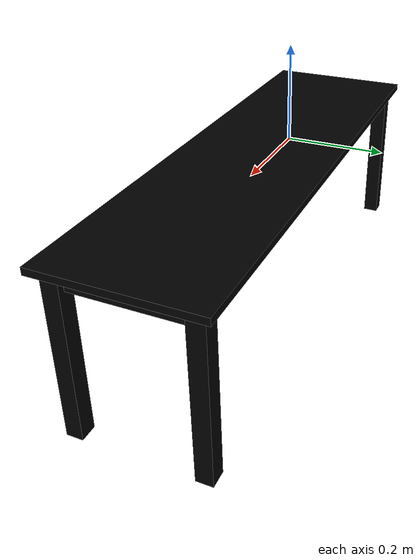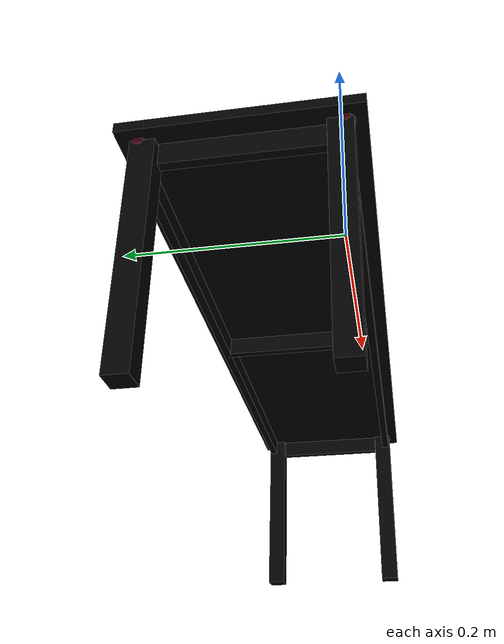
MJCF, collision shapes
<mujoco model="bench_bjursta_0210">
  <custom>
    <numeric data="0.044005 0.147878 0.01267 0.707107 0.0 0.707107 0.0" name="0_part0_initpos" />
    <numeric data="-0.034303 -0.042017 0.018623 0.0 0.999917 0.012922 0.0" name="4_part4_initpos" />
    <numeric data="-0.26206 0.145358 0.01267 -0.707107 0.0 0.707107 0.0" name="3_part3_initpos" />
    <numeric data="0.067242 0.223837 0.01267 0.49269 -0.49269 0.507205 -0.507205" name="2_part2_initpos" />
    <numeric data="-0.237903 0.241028 0.01267 0.502294 -0.502294 -0.497695 0.497695" name="1_part1_initpos" />
  </custom>
  <asset>
    <mesh file="bench_bjursta_0210/0.stl" name="part0" scale="0.0005 0.0005 0.0005" />
    <mesh file="bench_bjursta_0210/4.stl" name="part4" scale="0.0005 0.0005 0.0005" />
    <mesh file="bench_bjursta_0210/3.stl" name="part3" scale="0.0005 0.0005 0.0005" />
    <mesh file="bench_bjursta_0210/2.stl" name="part2" scale="0.0005 0.0005 0.0005" />
    <mesh file="bench_bjursta_0210/1.stl" name="part1" scale="0.0005 0.0005 0.0005" />
  </asset>

  <equality>
    <weld active="false" body1="0_part0" body2="4_part4" solimp="1 1 0.5" solref="0.01 0.3" />
    <weld active="false" body1="4_part4" body2="2_part2" solimp="1 1 0.5" solref="0.01 0.3" />
    <weld active="false" body1="4_part4" body2="3_part3" solimp="1 1 0.5" solref="0.01 0.3" />
    <weld active="false" body1="4_part4" body2="1_part1" solimp="1 1 0.5" solref="0.01 0.3" />
    <weld active="false" body1="1_part1" body2="4_part4" solimp="1 1 0.5" solref="0.01 0.3" />
    <weld active="false" body1="3_part3" body2="4_part4" solimp="1 1 0.5" solref="0.01 0.3" />
    <weld active="false" body1="2_part2" body2="4_part4" solimp="1 1 0.5" solref="0.01 0.3" />
    <weld active="false" body1="0_part0" body2="4_part4" solimp="1 1 0.5" solref="0.01 0.3" />
  </equality>
  <worldbody>
    <body name="0_part0" pos="0.0 -0.0 0.0" quat="1 0 0 0">
      <geom conaffinity="0" contype="0" density="0" mesh="part0" name="0_part0_mesh" pos="0.0 0.0 0.0" rgba="0.82 0.71 0.55 1" type="mesh" />
      <site group="1" name="0_part0_ltgt_site0" pos="0 -0.02 0" rgba="0 0 0 0" size="0.01 0.01 0.01" type="sphere" />
      <site group="1" name="0_part0_rtgt_site0" pos="0 0.02 0" rgba="0 0 0 0" size="0.01 0.01 0.01" type="sphere" />
      <site name="0_part0_horizontal_radius_site" pos="0.0 -0.0 0.0" quat="1 0 0 0" rgba="0 0 0 0" size="0.02" />
      <site name="0_part0_top_site" pos="0.0 0.0 0.127" quat="1 0 0 0" rgba="0 0 0 0" size="0.02" />
      <site name="0_part0_bottom_site" pos="0.0 0.0 -0.127" quat="1 0 0 0" rgba="0 0 0 0" size="0.02" />
      <site name="0_part0_corner_site8" pos="-0.012700000000000001 0.012700000000000001 0.127" quat="1 0 0 0" rgba="0 0 0 0" size="0.00025" />
      <site name="0_part0_corner_site7" pos="0.012700000000000001 0.012700000000000001 0.127" quat="1 0 0 0" rgba="0 0 0 0" size="0.00025" />
      <site name="0_part0_corner_site6" pos="0.012700000000000001 -0.012700000000000001 0.127" quat="1 0 0 0" rgba="0 0 0 0" size="0.00025" />
      <site name="0_part0_corner_site5" pos="-0.012700000000000001 -0.012700000000000001 0.127" quat="1 0 0 0" rgba="0 0 0 0" size="0.00025" />
      <site name="0_part0_corner_site4" pos="-0.012700000000000001 0.012700000000000001 -0.127" quat="1 0 0 0" rgba="0 0 0 0" size="0.00025" />
      <site name="0_part0_corner_site3" pos="0.012700000000000001 0.012700000000000001 -0.127" quat="1 0 0 0" rgba="0 0 0 0" size="0.00025" />
      <site name="0_part0_corner_site2" pos="0.012700000000000001 -0.012700000000000001 -0.127" quat="1 0 0 0" rgba="0 0 0 0" size="0.00025" />
      <site name="0_part0_corner_site1" pos="-0.012700000000000001 -0.012700000000000001 -0.127" quat="1 0 0 0" rgba="0 0 0 0" size="0.00025" />
      <site name="leg-top,0,90,180,270,conn_site4" pos="0.0001 -0.0014 0.1285" quat="1 0 0 0" rgba="0.9019 0.0980 0.2941 0.3" size="0.01" />
      <geom density="50" name="noviz_collision_0_part0_0" pos="0.0 0.0 0.0" quat="1 0 0 0" rgba="0 0 0 0" size="0.012700000000000001 0.012700000000000001 0.127" solref="0.001 1" type="box" />
    </body>
    <body name="4_part4" pos="0.3809999879 0.0951000122 0.1206499977" quat="1 0 0 0">
      <geom conaffinity="0" contype="0" density="0" mesh="part4" name="4_part4_mesh" pos="0.0 0.0 0.0" rgba="0.82 0.71 0.55 1" type="mesh" />
      <site name="4_part4_horizontal_radius_site" pos="0.0 0.0 0.0" quat="1 0 0 0" rgba="0 0 0 0" size="0.02" />
      <site name="4_part4_top_site" pos="0.0 0.0 0.019049999249999998" quat="1 0 0 0" rgba="0 0 0 0" size="0.02" />
      <site name="4_part4_bottom_site" pos="0.0 0.0 -0.019049999249999998" quat="1 0 0 0" rgba="0 0 0 0" size="0.02" />
      <site name="4_part4_corner_site8" pos="-0.4063999877 0.1206499634 0.019049999249999998" quat="1 0 0 0" rgba="0 0 0 0" size="0.00025" />
      <site name="4_part4_corner_site7" pos="0.4063999877 0.1206499634 0.019049999249999998" quat="1 0 0 0" rgba="0 0 0 0" size="0.00025" />
      <site name="4_part4_corner_site6" pos="0.4063999877 -0.1206499634 0.019049999249999998" quat="1 0 0 0" rgba="0 0 0 0" size="0.00025" />
      <site name="4_part4_corner_site5" pos="-0.4063999877 -0.1206499634 0.019049999249999998" quat="1 0 0 0" rgba="0 0 0 0" size="0.00025" />
      <site name="4_part4_corner_site4" pos="-0.4063999877 0.1206499634 -0.019049999249999998" quat="1 0 0 0" rgba="0 0 0 0" size="0.00025" />
      <site name="4_part4_corner_site3" pos="0.4063999877 0.1206499634 -0.019049999249999998" quat="1 0 0 0" rgba="0 0 0 0" size="0.00025" />
      <site name="4_part4_corner_site2" pos="0.4063999877 -0.1206499634 -0.019049999249999998" quat="1 0 0 0" rgba="0 0 0 0" size="0.00025" />
      <site name="4_part4_corner_site1" pos="-0.4063999877 -0.1206499634 -0.019049999249999998" quat="1 0 0 0" rgba="0 0 0 0" size="0.00025" />
      <site name="top-leg,0,90,180,270,conn_site4" pos="-0.3859 -0.0995 0.00785" quat="1 0 0 0" rgba="0.9019 0.0980 0.2941 0.3" size="0.01" />
      <site name="top-leg,0,90,180,270,conn_site3" pos="0.3856 -0.0995 0.00785" quat="1 0 0 0" rgba="0.9019 0.0980 0.2941 0.3" size="0.01" />
      <site name="top-leg,0,90,180,270,conn_site2" pos="-0.3859 0.0999 0.00785" quat="1 0 0 0" rgba="0.9019 0.0980 0.2941 0.3" size="0.01" />
      <site name="top-leg,0,90,180,270,conn_site1" pos="0.3856 0.0999 0.00785" quat="1 0 0 0" rgba="0.9019 0.0980 0.2941 0.3" size="0.01" />
      <geom density="50" name="noviz_collision_4_part4_0" pos="-0.00028 0.0 0.01305" quat="1 0 0 0" rgba="0 0 0 0" size="0.40612 0.12065 0.0055" solref="0.001 1" type="box" />
      <geom density="50" name="noviz_collision_4_part4_1" pos="-0.38 0.0 -0.00535" quat="1 0 0 0" rgba="0 0 0 0" size="0.005 0.0815 0.0125" solref="0.001 1" type="box" />
      <geom density="50" name="noviz_collision_4_part4_2" pos="0.38 0.0 -0.00535" quat="1 0 0 0" rgba="0 0 0 0" size="0.005 0.0815 0.0125" solref="0.001 1" type="box" />
      <geom density="50" name="noviz_collision_4_part4_3" pos="-0.00028 -0.1004 -0.00535" quat="1 0 0 0" rgba="0 0 0 0" size="0.365 0.005 0.0115" solref="0.001 1" type="box" />
      <geom density="50" name="noviz_collision_4_part4_4" pos="-0.00028 0.1009 -0.00535" quat="1 0 0 0" rgba="0 0 0 0" size="0.365 0.005 0.0115" solref="0.001 1" type="box" />
      <geom density="50" name="noviz_collision_4_part4_5" pos="-0.006100000000000001 0.0 -0.00535" quat="1 0 0 0" rgba="0 0 0 0" size="0.005 0.1 0.0115" solref="0.001 1" type="box" />
    </body>
    <body name="3_part3" pos="0.762 0.1905 0.0" quat="1 0 0 0">
      <geom conaffinity="0" contype="0" density="0" mesh="part3" name="3_part3_mesh" pos="0.0 0.0 0.0" rgba="0.82 0.71 0.55 1" type="mesh" />
      <site group="1" name="3_part3_ltgt_site0" pos="0 -0.02 0" rgba="0 0 0 0" size="0.01 0.01 0.01" type="sphere" />
      <site group="1" name="3_part3_rtgt_site0" pos="0 0.02 0" rgba="0 0 0 0" size="0.01 0.01 0.01" type="sphere" />
      <site name="3_part3_horizontal_radius_site" pos="-0.0 -0.0 0.0" quat="1 0 0 0" rgba="0 0 0 0" size="0.02" />
      <site name="3_part3_top_site" pos="0.0 0.0 0.127" quat="1 0 0 0" rgba="0 0 0 0" size="0.02" />
      <site name="3_part3_bottom_site" pos="0.0 0.0 -0.127" quat="1 0 0 0" rgba="0 0 0 0" size="0.02" />
      <site name="3_part3_corner_site8" pos="-0.012700000000000001 0.012700000000000001 0.127" quat="1 0 0 0" rgba="0 0 0 0" size="0.00025" />
      <site name="3_part3_corner_site7" pos="0.012700000000000001 0.012700000000000001 0.127" quat="1 0 0 0" rgba="0 0 0 0" size="0.00025" />
      <site name="3_part3_corner_site6" pos="0.012700000000000001 -0.012700000000000001 0.127" quat="1 0 0 0" rgba="0 0 0 0" size="0.00025" />
      <site name="3_part3_corner_site5" pos="-0.012700000000000001 -0.012700000000000001 0.127" quat="1 0 0 0" rgba="0 0 0 0" size="0.00025" />
      <site name="3_part3_corner_site4" pos="-0.012700000000000001 0.012700000000000001 -0.127" quat="1 0 0 0" rgba="0 0 0 0" size="0.00025" />
      <site name="3_part3_corner_site3" pos="0.012700000000000001 0.012700000000000001 -0.127" quat="1 0 0 0" rgba="0 0 0 0" size="0.00025" />
      <site name="3_part3_corner_site2" pos="0.012700000000000001 -0.012700000000000001 -0.127" quat="1 0 0 0" rgba="0 0 0 0" size="0.00025" />
      <site name="3_part3_corner_site1" pos="-0.012700000000000001 -0.012700000000000001 -0.127" quat="1 0 0 0" rgba="0 0 0 0" size="0.00025" />
      <site name="leg-top,0,90,180,270,conn_site1" pos="0.0006 0.0005 0.1285" quat="1 0 0 0" rgba="0.9019 0.0980 0.2941 0.3" size="0.01" />
      <geom density="50" name="noviz_collision_3_part3_0" pos="0.0 0.0 0.0" quat="1 0 0 0" rgba="0 0 0 0" size="0.012700000000000001 0.012700000000000001 0.127" solref="0.001 1" type="box" />
    </body>
    <body name="2_part2" pos="0.0 0.1905 0.0" quat="1 0 0 0">
      <geom conaffinity="0" contype="0" density="0" mesh="part2" name="2_part2_mesh" pos="0.0 0.0 0.0" rgba="0.82 0.71 0.55 1" type="mesh" />
      <site group="1" name="2_part2_ltgt_site0" pos="-0.02 0 0" rgba="0 0 0 0" size="0.01 0.01 0.01" type="sphere" />
      <site group="1" name="2_part2_rtgt_site0" pos="0.02 0 0" rgba="0 0 0 0" size="0.01 0.01 0.01" type="sphere" />
      <site name="2_part2_horizontal_radius_site" pos="0.0 -0.0 0.0" quat="1 0 0 0" rgba="0 0 0 0" size="0.02" />
      <site name="2_part2_top_site" pos="0.0 0.0 0.127" quat="1 0 0 0" rgba="0 0 0 0" size="0.02" />
      <site name="2_part2_bottom_site" pos="0.0 0.0 -0.127" quat="1 0 0 0" rgba="0 0 0 0" size="0.02" />
      <site name="2_part2_corner_site8" pos="-0.012700000000000001 0.012700000000000001 0.127" quat="1 0 0 0" rgba="0 0 0 0" size="0.00025" />
      <site name="2_part2_corner_site7" pos="0.012700000000000001 0.012700000000000001 0.127" quat="1 0 0 0" rgba="0 0 0 0" size="0.00025" />
      <site name="2_part2_corner_site6" pos="0.012700000000000001 -0.012700000000000001 0.127" quat="1 0 0 0" rgba="0 0 0 0" size="0.00025" />
      <site name="2_part2_corner_site5" pos="-0.012700000000000001 -0.012700000000000001 0.127" quat="1 0 0 0" rgba="0 0 0 0" size="0.00025" />
      <site name="2_part2_corner_site4" pos="-0.012700000000000001 0.012700000000000001 -0.127" quat="1 0 0 0" rgba="0 0 0 0" size="0.00025" />
      <site name="2_part2_corner_site3" pos="0.012700000000000001 0.012700000000000001 -0.127" quat="1 0 0 0" rgba="0 0 0 0" size="0.00025" />
      <site name="2_part2_corner_site2" pos="0.012700000000000001 -0.012700000000000001 -0.127" quat="1 0 0 0" rgba="0 0 0 0" size="0.00025" />
      <site name="2_part2_corner_site1" pos="-0.012700000000000001 -0.012700000000000001 -0.127" quat="1 0 0 0" rgba="0 0 0 0" size="0.00025" />
      <site name="leg-top,0,90,180,270,conn_site2" pos="0.0001 0.0005 0.1285" quat="1 0 0 0" rgba="0.9019 0.0980 0.2941 0.3" size="0.01" />
      <geom density="50" name="noviz_collision_2_part2_0" pos="0.0 0.0 0.0" quat="1 0 0 0" rgba="0 0 0 0" size="0.012700000000000001 0.012700000000000001 0.127" solref="0.001 1" type="box" />
    </body>
    <body name="1_part1" pos="0.762 -0.0 0.0" quat="1 0 0 0">
      <site group="1" name="1_part1_ltgt_site0" pos="-0.02 0 0" rgba="0 0 0 0" size="0.01 0.01 0.01" type="sphere" />
      <site group="1" name="1_part1_rtgt_site0" pos="0.02 0 0" rgba="0 0 0 0" size="0.01 0.01 0.01" type="sphere" />
      <geom conaffinity="0" contype="0" density="0" mesh="part1" name="1_part1_mesh" pos="0.0 0.0 0.0" rgba="0.82 0.71 0.55 1" type="mesh" />
      <site name="1_part1_horizontal_radius_site" pos="-0.0 -0.0 0.0" quat="1 0 0 0" rgba="0 0 0 0" size="0.02" />
      <site name="1_part1_top_site" pos="0.0 0.0 0.127" quat="1 0 0 0" rgba="0 0 0 0" size="0.02" />
      <site name="1_part1_bottom_site" pos="0.0 0.0 -0.127" quat="1 0 0 0" rgba="0 0 0 0" size="0.02" />
      <site name="1_part1_corner_site8" pos="-0.012700000000000001 0.012700000000000001 0.127" quat="1 0 0 0" rgba="0 0 0 0" size="0.00025" />
      <site name="1_part1_corner_site7" pos="0.012700000000000001 0.012700000000000001 0.127" quat="1 0 0 0" rgba="0 0 0 0" size="0.00025" />
      <site name="1_part1_corner_site6" pos="0.012700000000000001 -0.012700000000000001 0.127" quat="1 0 0 0" rgba="0 0 0 0" size="0.00025" />
      <site name="1_part1_corner_site5" pos="-0.012700000000000001 -0.012700000000000001 0.127" quat="1 0 0 0" rgba="0 0 0 0" size="0.00025" />
      <site name="1_part1_corner_site4" pos="-0.012700000000000001 0.012700000000000001 -0.127" quat="1 0 0 0" rgba="0 0 0 0" size="0.00025" />
      <site name="1_part1_corner_site3" pos="0.012700000000000001 0.012700000000000001 -0.127" quat="1 0 0 0" rgba="0 0 0 0" size="0.00025" />
      <site name="1_part1_corner_site2" pos="0.012700000000000001 -0.012700000000000001 -0.127" quat="1 0 0 0" rgba="0 0 0 0" size="0.00025" />
      <site name="1_part1_corner_site1" pos="-0.012700000000000001 -0.012700000000000001 -0.127" quat="1 0 0 0" rgba="0 0 0 0" size="0.00025" />
      <site name="leg-top,0,90,180,270,conn_site3" pos="0.0006 -0.0014 0.1285" quat="1 0 0 0" rgba="0.9019 0.0980 0.2941 0.3" size="0.01" />
      <geom density="50" name="noviz_collision_1_part1_0" pos="0.0 0.0 0.0" quat="1 0 0 0" rgba="0 0 0 0" size="0.012700000000000001 0.012700000000000001 0.127" solref="0.001 1" type="box" />
    </body>
  </worldbody>
<actuator /><sensor /><contact /><default /></mujoco>
